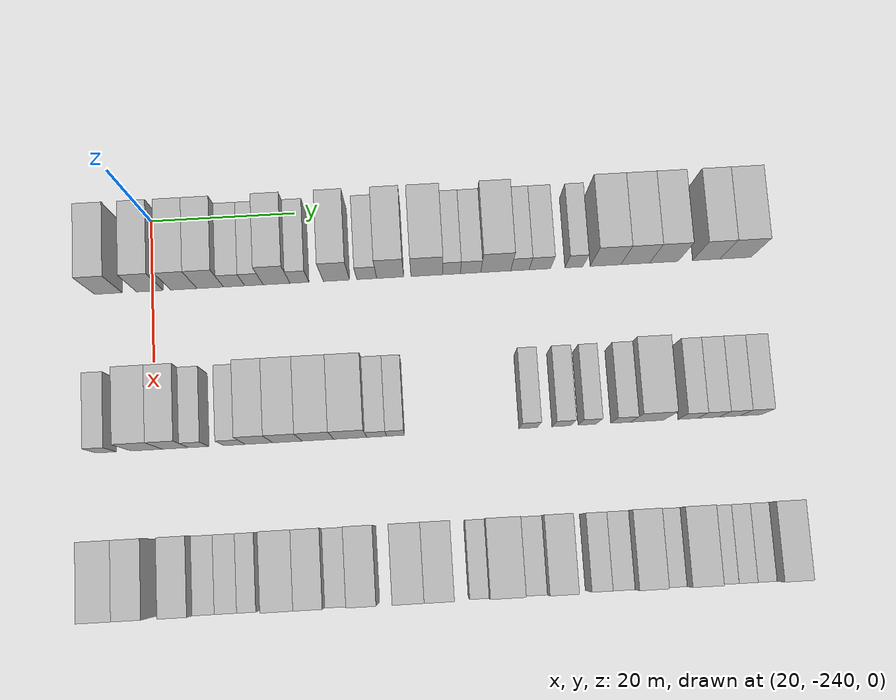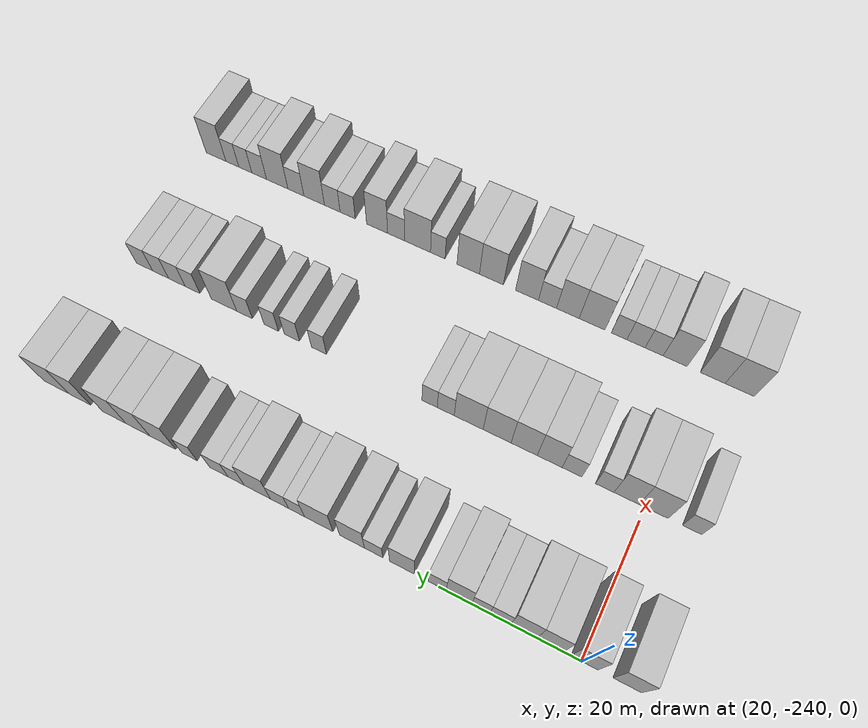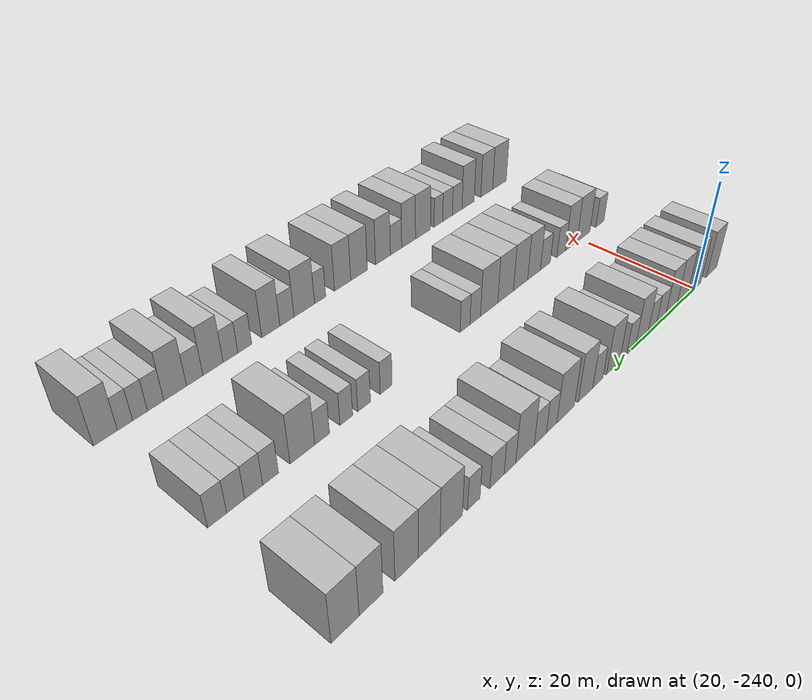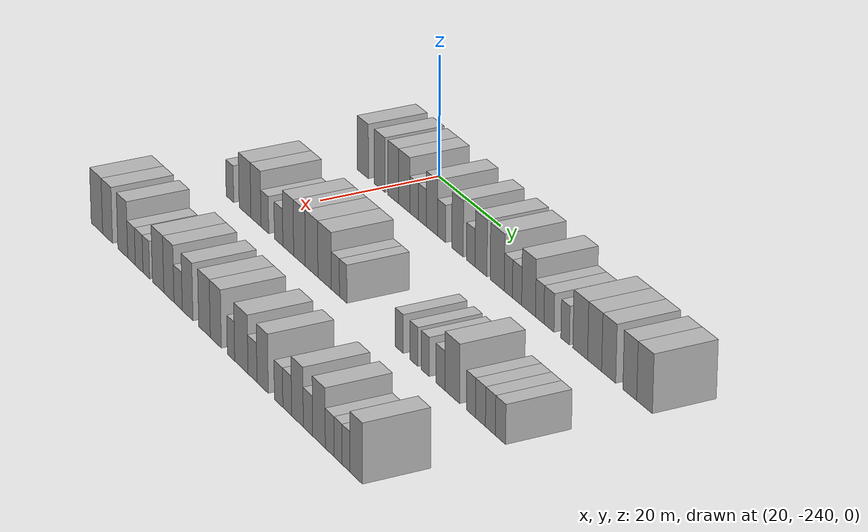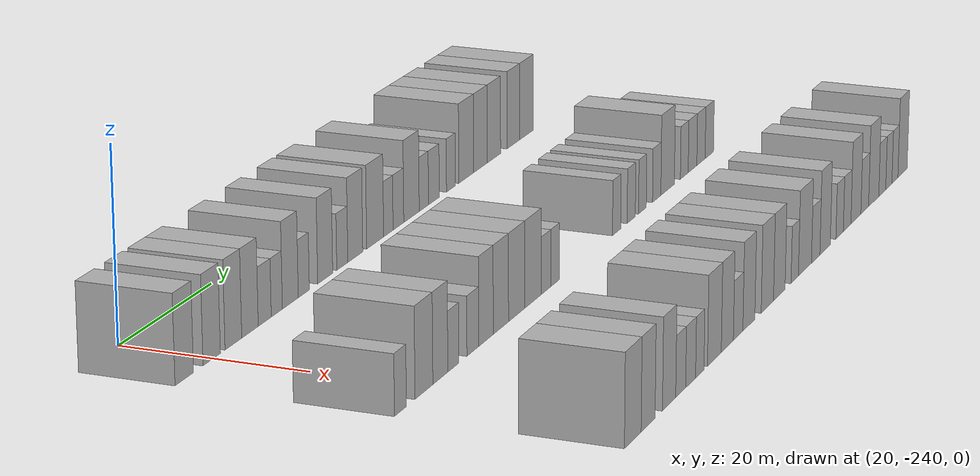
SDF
<sdf version="1.6">
 <world name="default">
  <model name="building_1">
   <static>1</static>
   <pose>25.0000 -246.0928 0 0.000000 0.000000 0.000000</pose>
   <link name="link">
    <pose>0 0 4.50 0 0 0</pose>
    <collision name="collision"><geometry><box><size>10.0000 3.8145 9.0000</size></box></geometry></collision>
    <visual name="visual">
     <cast_shadows>0</cast_shadows>
     <geometry><box><size>10.0000 3.8145 9.0000</size></box></geometry>
     <material>
      <script>
       <uri>model://HANNAS_wall/materials/scripts</uri>
       <uri>model://HANNAS_wall/materials/textures</uri>
       <name>vrc/HANNAS_wall</name>
      </script>
     </material>
    </visual>
   </link>
  </model>
  <model name="building_2">
   <static>1</static>
   <pose>25.0000 -240.3374 0 0.000000 0.000000 0.000000</pose>
   <link name="link">
    <pose>0 0 4.50 0 0 0</pose>
    <collision name="collision"><geometry><box><size>10.0000 3.6962 9.0000</size></box></geometry></collision>
    <visual name="visual">
     <cast_shadows>0</cast_shadows>
     <geometry><box><size>10.0000 3.6962 9.0000</size></box></geometry>
     <material>
      <script>
       <uri>model://HANNAS_wall/materials/scripts</uri>
       <uri>model://HANNAS_wall/materials/textures</uri>
       <name>vrc/HANNAS_wall</name>
      </script>
     </material>
    </visual>
   </link>
  </model>
  <model name="building_3">
   <static>1</static>
   <pose>25.0000 -235.6657 0 0.000000 0.000000 0.000000</pose>
   <link name="link">
    <pose>0 0 4.50 0 0 0</pose>
    <collision name="collision"><geometry><box><size>10.0000 3.6471 9.0000</size></box></geometry></collision>
    <visual name="visual">
     <cast_shadows>0</cast_shadows>
     <geometry><box><size>10.0000 3.6471 9.0000</size></box></geometry>
     <material>
      <script>
       <uri>model://HANNAS_wall/materials/scripts</uri>
       <uri>model://HANNAS_wall/materials/textures</uri>
       <name>vrc/HANNAS_wall</name>
      </script>
     </material>
    </visual>
   </link>
  </model>
  <model name="building_4">
   <static>1</static>
   <pose>25.0000 -232.0111 0 0.000000 0.000000 0.000000</pose>
   <link name="link">
    <pose>0 0 4.50 0 0 0</pose>
    <collision name="collision"><geometry><box><size>10.0000 3.6621 9.0000</size></box></geometry></collision>
    <visual name="visual">
     <cast_shadows>0</cast_shadows>
     <geometry><box><size>10.0000 3.6621 9.0000</size></box></geometry>
     <material>
      <script>
       <uri>model://HANNAS_wall/materials/scripts</uri>
       <uri>model://HANNAS_wall/materials/textures</uri>
       <name>vrc/HANNAS_wall</name>
      </script>
     </material>
    </visual>
   </link>
  </model>
  <model name="building_5">
   <static>1</static>
   <pose>25.0000 -228.7073 0 0.000000 0.000000 0.000000</pose>
   <link name="link">
    <pose>0 0 3.00 0 0 0</pose>
    <collision name="collision"><geometry><box><size>10.0000 2.9455 6.0000</size></box></geometry></collision>
    <visual name="visual">
     <cast_shadows>0</cast_shadows>
     <geometry><box><size>10.0000 2.9455 6.0000</size></box></geometry>
     <material>
      <script>
       <uri>model://HANNAS_wall/materials/scripts</uri>
       <uri>model://HANNAS_wall/materials/textures</uri>
       <name>vrc/HANNAS_wall</name>
      </script>
     </material>
    </visual>
   </link>
  </model>
  <model name="building_6">
   <static>1</static>
   <pose>25.0000 -225.9592 0 0.000000 0.000000 0.000000</pose>
   <link name="link">
    <pose>0 0 3.00 0 0 0</pose>
    <collision name="collision"><geometry><box><size>10.0000 2.5508 6.0000</size></box></geometry></collision>
    <visual name="visual">
     <cast_shadows>0</cast_shadows>
     <geometry><box><size>10.0000 2.5508 6.0000</size></box></geometry>
     <material>
      <script>
       <uri>model://HANNAS_wall/materials/scripts</uri>
       <uri>model://HANNAS_wall/materials/textures</uri>
       <name>vrc/HANNAS_wall</name>
      </script>
     </material>
    </visual>
   </link>
  </model>
  <model name="building_7">
   <static>1</static>
   <pose>25.0000 -222.8356 0 0.000000 0.000000 0.000000</pose>
   <link name="link">
    <pose>0 0 4.50 0 0 0</pose>
    <collision name="collision"><geometry><box><size>10.0000 3.6965 9.0000</size></box></geometry></collision>
    <visual name="visual">
     <cast_shadows>0</cast_shadows>
     <geometry><box><size>10.0000 3.6965 9.0000</size></box></geometry>
     <material>
      <script>
       <uri>model://HANNAS_wall/materials/scripts</uri>
       <uri>model://HANNAS_wall/materials/textures</uri>
       <name>vrc/HANNAS_wall</name>
      </script>
     </material>
    </visual>
   </link>
  </model>
  <model name="building_8">
   <static>1</static>
   <pose>25.0000 -219.6797 0 0.000000 0.000000 0.000000</pose>
   <link name="link">
    <pose>0 0 3.00 0 0 0</pose>
    <collision name="collision"><geometry><box><size>10.0000 2.6153 6.0000</size></box></geometry></collision>
    <visual name="visual">
     <cast_shadows>0</cast_shadows>
     <geometry><box><size>10.0000 2.6153 6.0000</size></box></geometry>
     <material>
      <script>
       <uri>model://HANNAS_wall/materials/scripts</uri>
       <uri>model://HANNAS_wall/materials/textures</uri>
       <name>vrc/HANNAS_wall</name>
      </script>
     </material>
    </visual>
   </link>
  </model>
  <model name="building_9">
   <static>1</static>
   <pose>25.0000 -214.5535 0 0.000000 0.000000 0.000000</pose>
   <link name="link">
    <pose>0 0 4.50 0 0 0</pose>
    <collision name="collision"><geometry><box><size>10.0000 3.6370 9.0000</size></box></geometry></collision>
    <visual name="visual">
     <cast_shadows>0</cast_shadows>
     <geometry><box><size>10.0000 3.6370 9.0000</size></box></geometry>
     <material>
      <script>
       <uri>model://HANNAS_wall/materials/scripts</uri>
       <uri>model://HANNAS_wall/materials/textures</uri>
       <name>vrc/HANNAS_wall</name>
      </script>
     </material>
    </visual>
   </link>
  </model>
  <model name="building_10">
   <static>1</static>
   <pose>25.0000 -210.3671 0 0.000000 0.000000 0.000000</pose>
   <link name="link">
    <pose>0 0 3.00 0 0 0</pose>
    <collision name="collision"><geometry><box><size>10.0000 2.7357 6.0000</size></box></geometry></collision>
    <visual name="visual">
     <cast_shadows>0</cast_shadows>
     <geometry><box><size>10.0000 2.7357 6.0000</size></box></geometry>
     <material>
      <script>
       <uri>model://HANNAS_wall/materials/scripts</uri>
       <uri>model://HANNAS_wall/materials/textures</uri>
       <name>vrc/HANNAS_wall</name>
      </script>
     </material>
    </visual>
   </link>
  </model>
  <model name="building_11">
   <static>1</static>
   <pose>25.0000 -207.1221 0 0.000000 0.000000 0.000000</pose>
   <link name="link">
    <pose>0 0 4.50 0 0 0</pose>
    <collision name="collision"><geometry><box><size>10.0000 3.7543 9.0000</size></box></geometry></collision>
    <visual name="visual">
     <cast_shadows>0</cast_shadows>
     <geometry><box><size>10.0000 3.7543 9.0000</size></box></geometry>
     <material>
      <script>
       <uri>model://HANNAS_wall/materials/scripts</uri>
       <uri>model://HANNAS_wall/materials/textures</uri>
       <name>vrc/HANNAS_wall</name>
      </script>
     </material>
    </visual>
   </link>
  </model>
  <model name="building_12">
   <static>1</static>
   <pose>25.0000 -202.0649 0 0.000000 0.000000 0.000000</pose>
   <link name="link">
    <pose>0 0 4.50 0 0 0</pose>
    <collision name="collision"><geometry><box><size>10.0000 4.3602 9.0000</size></box></geometry></collision>
    <visual name="visual">
     <cast_shadows>0</cast_shadows>
     <geometry><box><size>10.0000 4.3602 9.0000</size></box></geometry>
     <material>
      <script>
       <uri>model://HANNAS_wall/materials/scripts</uri>
       <uri>model://HANNAS_wall/materials/textures</uri>
       <name>vrc/HANNAS_wall</name>
      </script>
     </material>
    </visual>
   </link>
  </model>
  <model name="building_13">
   <static>1</static>
   <pose>25.0000 -198.6433 0 0.000000 0.000000 0.000000</pose>
   <link name="link">
    <pose>0 0 3.00 0 0 0</pose>
    <collision name="collision"><geometry><box><size>10.0000 2.4829 6.0000</size></box></geometry></collision>
    <visual name="visual">
     <cast_shadows>0</cast_shadows>
     <geometry><box><size>10.0000 2.4829 6.0000</size></box></geometry>
     <material>
      <script>
       <uri>model://HANNAS_wall/materials/scripts</uri>
       <uri>model://HANNAS_wall/materials/textures</uri>
       <name>vrc/HANNAS_wall</name>
      </script>
     </material>
    </visual>
   </link>
  </model>
  <model name="building_14">
   <static>1</static>
   <pose>25.0000 -195.9856 0 0.000000 0.000000 0.000000</pose>
   <link name="link">
    <pose>0 0 3.00 0 0 0</pose>
    <collision name="collision"><geometry><box><size>10.0000 2.8325 6.0000</size></box></geometry></collision>
    <visual name="visual">
     <cast_shadows>0</cast_shadows>
     <geometry><box><size>10.0000 2.8325 6.0000</size></box></geometry>
     <material>
      <script>
       <uri>model://HANNAS_wall/materials/scripts</uri>
       <uri>model://HANNAS_wall/materials/textures</uri>
       <name>vrc/HANNAS_wall</name>
      </script>
     </material>
    </visual>
   </link>
  </model>
  <model name="building_15">
   <static>1</static>
   <pose>25.0000 -192.4904 0 0.000000 0.000000 0.000000</pose>
   <link name="link">
    <pose>0 0 4.50 0 0 0</pose>
    <collision name="collision"><geometry><box><size>10.0000 4.1579 9.0000</size></box></geometry></collision>
    <visual name="visual">
     <cast_shadows>0</cast_shadows>
     <geometry><box><size>10.0000 4.1579 9.0000</size></box></geometry>
     <material>
      <script>
       <uri>model://HANNAS_wall/materials/scripts</uri>
       <uri>model://HANNAS_wall/materials/textures</uri>
       <name>vrc/HANNAS_wall</name>
      </script>
     </material>
    </visual>
   </link>
  </model>
  <model name="building_16">
   <static>1</static>
   <pose>25.0000 -189.1389 0 0.000000 0.000000 0.000000</pose>
   <link name="link">
    <pose>0 0 3.00 0 0 0</pose>
    <collision name="collision"><geometry><box><size>10.0000 2.5451 6.0000</size></box></geometry></collision>
    <visual name="visual">
     <cast_shadows>0</cast_shadows>
     <geometry><box><size>10.0000 2.5451 6.0000</size></box></geometry>
     <material>
      <script>
       <uri>model://HANNAS_wall/materials/scripts</uri>
       <uri>model://HANNAS_wall/materials/textures</uri>
       <name>vrc/HANNAS_wall</name>
      </script>
     </material>
    </visual>
   </link>
  </model>
  <model name="building_17">
   <static>1</static>
   <pose>25.0000 -186.3680 0 0.000000 0.000000 0.000000</pose>
   <link name="link">
    <pose>0 0 3.00 0 0 0</pose>
    <collision name="collision"><geometry><box><size>10.0000 2.9968 6.0000</size></box></geometry></collision>
    <visual name="visual">
     <cast_shadows>0</cast_shadows>
     <geometry><box><size>10.0000 2.9968 6.0000</size></box></geometry>
     <material>
      <script>
       <uri>model://HANNAS_wall/materials/scripts</uri>
       <uri>model://HANNAS_wall/materials/textures</uri>
       <name>vrc/HANNAS_wall</name>
      </script>
     </material>
    </visual>
   </link>
  </model>
  <model name="building_18">
   <static>1</static>
   <pose>25.0000 -181.6189 0 0.000000 0.000000 0.000000</pose>
   <link name="link">
    <pose>0 0 3.00 0 0 0</pose>
    <collision name="collision"><geometry><box><size>10.0000 2.5014 6.0000</size></box></geometry></collision>
    <visual name="visual">
     <cast_shadows>0</cast_shadows>
     <geometry><box><size>10.0000 2.5014 6.0000</size></box></geometry>
     <material>
      <script>
       <uri>model://HANNAS_wall/materials/scripts</uri>
       <uri>model://HANNAS_wall/materials/textures</uri>
       <name>vrc/HANNAS_wall</name>
      </script>
     </material>
    </visual>
   </link>
  </model>
  <model name="building_19">
   <static>1</static>
   <pose>25.0000 -177.2330 0 0.000000 0.000000 0.000000</pose>
   <link name="link">
    <pose>0 0 4.50 0 0 0</pose>
    <collision name="collision"><geometry><box><size>10.0000 4.2704 9.0000</size></box></geometry></collision>
    <visual name="visual">
     <cast_shadows>0</cast_shadows>
     <geometry><box><size>10.0000 4.2704 9.0000</size></box></geometry>
     <material>
      <script>
       <uri>model://HANNAS_wall/materials/scripts</uri>
       <uri>model://HANNAS_wall/materials/textures</uri>
       <name>vrc/HANNAS_wall</name>
      </script>
     </material>
    </visual>
   </link>
  </model>
  <model name="building_20">
   <static>1</static>
   <pose>25.0000 -173.0918 0 0.000000 0.000000 0.000000</pose>
   <link name="link">
    <pose>0 0 4.50 0 0 0</pose>
    <collision name="collision"><geometry><box><size>10.0000 4.0120 9.0000</size></box></geometry></collision>
    <visual name="visual">
     <cast_shadows>0</cast_shadows>
     <geometry><box><size>10.0000 4.0120 9.0000</size></box></geometry>
     <material>
      <script>
       <uri>model://HANNAS_wall/materials/scripts</uri>
       <uri>model://HANNAS_wall/materials/textures</uri>
       <name>vrc/HANNAS_wall</name>
      </script>
     </material>
    </visual>
   </link>
  </model>
  <model name="building_21">
   <static>1</static>
   <pose>25.0000 -169.0898 0 0.000000 0.000000 0.000000</pose>
   <link name="link">
    <pose>0 0 4.50 0 0 0</pose>
    <collision name="collision"><geometry><box><size>10.0000 3.9919 9.0000</size></box></geometry></collision>
    <visual name="visual">
     <cast_shadows>0</cast_shadows>
     <geometry><box><size>10.0000 3.9919 9.0000</size></box></geometry>
     <material>
      <script>
       <uri>model://HANNAS_wall/materials/scripts</uri>
       <uri>model://HANNAS_wall/materials/textures</uri>
       <name>vrc/HANNAS_wall</name>
      </script>
     </material>
    </visual>
   </link>
  </model>
  <model name="building_22">
   <static>1</static>
   <pose>25.0000 -163.1748 0 0.000000 0.000000 0.000000</pose>
   <link name="link">
    <pose>0 0 4.50 0 0 0</pose>
    <collision name="collision"><geometry><box><size>10.0000 3.8382 9.0000</size></box></geometry></collision>
    <visual name="visual">
     <cast_shadows>0</cast_shadows>
     <geometry><box><size>10.0000 3.8382 9.0000</size></box></geometry>
     <material>
      <script>
       <uri>model://HANNAS_wall/materials/scripts</uri>
       <uri>model://HANNAS_wall/materials/textures</uri>
       <name>vrc/HANNAS_wall</name>
      </script>
     </material>
    </visual>
   </link>
  </model>
  <model name="building_23">
   <static>1</static>
   <pose>25.0000 -159.0883 0 0.000000 0.000000 0.000000</pose>
   <link name="link">
    <pose>0 0 4.50 0 0 0</pose>
    <collision name="collision"><geometry><box><size>10.0000 4.3348 9.0000</size></box></geometry></collision>
    <visual name="visual">
     <cast_shadows>0</cast_shadows>
     <geometry><box><size>10.0000 4.3348 9.0000</size></box></geometry>
     <material>
      <script>
       <uri>model://HANNAS_wall/materials/scripts</uri>
       <uri>model://HANNAS_wall/materials/textures</uri>
       <name>vrc/HANNAS_wall</name>
      </script>
     </material>
    </visual>
   </link>
  </model>
  <model name="building_118">
   <static>1</static>
   <pose>47.0000 -246.6379 0 0.000000 0.000000 0.000000</pose>
   <link name="link">
    <pose>0 0 3.00 0 0 0</pose>
    <collision name="collision"><geometry><box><size>10.0000 2.7242 6.0000</size></box></geometry></collision>
    <visual name="visual">
     <cast_shadows>0</cast_shadows>
     <geometry><box><size>10.0000 2.7242 6.0000</size></box></geometry>
     <material>
      <script>
       <uri>model://HANNAS_wall/materials/scripts</uri>
       <uri>model://HANNAS_wall/materials/textures</uri>
       <name>vrc/HANNAS_wall</name>
      </script>
     </material>
    </visual>
   </link>
  </model>
  <model name="building_119">
   <static>1</static>
   <pose>47.0000 -241.1770 0 0.000000 0.000000 0.000000</pose>
   <link name="link">
    <pose>0 0 4.50 0 0 0</pose>
    <collision name="collision"><geometry><box><size>10.0000 4.1976 9.0000</size></box></geometry></collision>
    <visual name="visual">
     <cast_shadows>0</cast_shadows>
     <geometry><box><size>10.0000 4.1976 9.0000</size></box></geometry>
     <material>
      <script>
       <uri>model://HANNAS_wall/materials/scripts</uri>
       <uri>model://HANNAS_wall/materials/textures</uri>
       <name>vrc/HANNAS_wall</name>
      </script>
     </material>
    </visual>
   </link>
  </model>
  <model name="building_120">
   <static>1</static>
   <pose>47.0000 -237.2765 0 0.000000 0.000000 0.000000</pose>
   <link name="link">
    <pose>0 0 4.50 0 0 0</pose>
    <collision name="collision"><geometry><box><size>10.0000 3.6033 9.0000</size></box></geometry></collision>
    <visual name="visual">
     <cast_shadows>0</cast_shadows>
     <geometry><box><size>10.0000 3.6033 9.0000</size></box></geometry>
     <material>
      <script>
       <uri>model://HANNAS_wall/materials/scripts</uri>
       <uri>model://HANNAS_wall/materials/textures</uri>
       <name>vrc/HANNAS_wall</name>
      </script>
     </material>
    </visual>
   </link>
  </model>
  <model name="building_121">
   <static>1</static>
   <pose>47.0000 -234.1276 0 0.000000 0.000000 0.000000</pose>
   <link name="link">
    <pose>0 0 3.00 0 0 0</pose>
    <collision name="collision"><geometry><box><size>10.0000 2.6944 6.0000</size></box></geometry></collision>
    <visual name="visual">
     <cast_shadows>0</cast_shadows>
     <geometry><box><size>10.0000 2.6944 6.0000</size></box></geometry>
     <material>
      <script>
       <uri>model://HANNAS_wall/materials/scripts</uri>
       <uri>model://HANNAS_wall/materials/textures</uri>
       <name>vrc/HANNAS_wall</name>
      </script>
     </material>
    </visual>
   </link>
  </model>
  <model name="building_122">
   <static>1</static>
   <pose>47.0000 -229.3101 0 0.000000 0.000000 0.000000</pose>
   <link name="link">
    <pose>0 0 3.00 0 0 0</pose>
    <collision name="collision"><geometry><box><size>10.0000 2.9406 6.0000</size></box></geometry></collision>
    <visual name="visual">
     <cast_shadows>0</cast_shadows>
     <geometry><box><size>10.0000 2.9406 6.0000</size></box></geometry>
     <material>
      <script>
       <uri>model://HANNAS_wall/materials/scripts</uri>
       <uri>model://HANNAS_wall/materials/textures</uri>
       <name>vrc/HANNAS_wall</name>
      </script>
     </material>
    </visual>
   </link>
  </model>
  <model name="building_123">
   <static>1</static>
   <pose>47.0000 -225.9829 0 0.000000 0.000000 0.000000</pose>
   <link name="link">
    <pose>0 0 4.50 0 0 0</pose>
    <collision name="collision"><geometry><box><size>10.0000 3.7139 9.0000</size></box></geometry></collision>
    <visual name="visual">
     <cast_shadows>0</cast_shadows>
     <geometry><box><size>10.0000 3.7139 9.0000</size></box></geometry>
     <material>
      <script>
       <uri>model://HANNAS_wall/materials/scripts</uri>
       <uri>model://HANNAS_wall/materials/textures</uri>
       <name>vrc/HANNAS_wall</name>
      </script>
     </material>
    </visual>
   </link>
  </model>
  <model name="building_124">
   <static>1</static>
   <pose>47.0000 -222.1419 0 0.000000 0.000000 0.000000</pose>
   <link name="link">
    <pose>0 0 4.50 0 0 0</pose>
    <collision name="collision"><geometry><box><size>10.0000 3.9681 9.0000</size></box></geometry></collision>
    <visual name="visual">
     <cast_shadows>0</cast_shadows>
     <geometry><box><size>10.0000 3.9681 9.0000</size></box></geometry>
     <material>
      <script>
       <uri>model://HANNAS_wall/materials/scripts</uri>
       <uri>model://HANNAS_wall/materials/textures</uri>
       <name>vrc/HANNAS_wall</name>
      </script>
     </material>
    </visual>
   </link>
  </model>
  <model name="building_125">
   <static>1</static>
   <pose>47.0000 -218.0190 0 0.000000 0.000000 0.000000</pose>
   <link name="link">
    <pose>0 0 4.50 0 0 0</pose>
    <collision name="collision"><geometry><box><size>10.0000 4.2778 9.0000</size></box></geometry></collision>
    <visual name="visual">
     <cast_shadows>0</cast_shadows>
     <geometry><box><size>10.0000 4.2778 9.0000</size></box></geometry>
     <material>
      <script>
       <uri>model://HANNAS_wall/materials/scripts</uri>
       <uri>model://HANNAS_wall/materials/textures</uri>
       <name>vrc/HANNAS_wall</name>
      </script>
     </material>
    </visual>
   </link>
  </model>
  <model name="building_126">
   <static>1</static>
   <pose>47.0000 -213.6345 0 0.000000 0.000000 0.000000</pose>
   <link name="link">
    <pose>0 0 4.50 0 0 0</pose>
    <collision name="collision"><geometry><box><size>10.0000 4.4910 9.0000</size></box></geometry></collision>
    <visual name="visual">
     <cast_shadows>0</cast_shadows>
     <geometry><box><size>10.0000 4.4910 9.0000</size></box></geometry>
     <material>
      <script>
       <uri>model://HANNAS_wall/materials/scripts</uri>
       <uri>model://HANNAS_wall/materials/textures</uri>
       <name>vrc/HANNAS_wall</name>
      </script>
     </material>
    </visual>
   </link>
  </model>
  <model name="building_127">
   <static>1</static>
   <pose>47.0000 -210.0616 0 0.000000 0.000000 0.000000</pose>
   <link name="link">
    <pose>0 0 3.00 0 0 0</pose>
    <collision name="collision"><geometry><box><size>10.0000 2.6549 6.0000</size></box></geometry></collision>
    <visual name="visual">
     <cast_shadows>0</cast_shadows>
     <geometry><box><size>10.0000 2.6549 6.0000</size></box></geometry>
     <material>
      <script>
       <uri>model://HANNAS_wall/materials/scripts</uri>
       <uri>model://HANNAS_wall/materials/textures</uri>
       <name>vrc/HANNAS_wall</name>
      </script>
     </material>
    </visual>
   </link>
  </model>
  <model name="building_128">
   <static>1</static>
   <pose>47.0000 -207.5198 0 0.000000 0.000000 0.000000</pose>
   <link name="link">
    <pose>0 0 3.00 0 0 0</pose>
    <collision name="collision"><geometry><box><size>10.0000 2.4287 6.0000</size></box></geometry></collision>
    <visual name="visual">
     <cast_shadows>0</cast_shadows>
     <geometry><box><size>10.0000 2.4287 6.0000</size></box></geometry>
     <material>
      <script>
       <uri>model://HANNAS_wall/materials/scripts</uri>
       <uri>model://HANNAS_wall/materials/textures</uri>
       <name>vrc/HANNAS_wall</name>
      </script>
     </material>
    </visual>
   </link>
  </model>
  <model name="building_129">
   <static>1</static>
   <pose>47.0000 -189.5593 0 0.000000 0.000000 0.000000</pose>
   <link name="link">
    <pose>0 0 3.00 0 0 0</pose>
    <collision name="collision"><geometry><box><size>10.0000 2.4974 6.0000</size></box></geometry></collision>
    <visual name="visual">
     <cast_shadows>0</cast_shadows>
     <geometry><box><size>10.0000 2.4974 6.0000</size></box></geometry>
     <material>
      <script>
       <uri>model://HANNAS_wall/materials/scripts</uri>
       <uri>model://HANNAS_wall/materials/textures</uri>
       <name>vrc/HANNAS_wall</name>
      </script>
     </material>
    </visual>
   </link>
  </model>
  <model name="building_130">
   <static>1</static>
   <pose>47.0000 -185.0377 0 0.000000 0.000000 0.000000</pose>
   <link name="link">
    <pose>0 0 3.00 0 0 0</pose>
    <collision name="collision"><geometry><box><size>10.0000 2.5457 6.0000</size></box></geometry></collision>
    <visual name="visual">
     <cast_shadows>0</cast_shadows>
     <geometry><box><size>10.0000 2.5457 6.0000</size></box></geometry>
     <material>
      <script>
       <uri>model://HANNAS_wall/materials/scripts</uri>
       <uri>model://HANNAS_wall/materials/textures</uri>
       <name>vrc/HANNAS_wall</name>
      </script>
     </material>
    </visual>
   </link>
  </model>
  <model name="building_131">
   <static>1</static>
   <pose>47.0000 -181.5389 0 0.000000 0.000000 0.000000</pose>
   <link name="link">
    <pose>0 0 3.00 0 0 0</pose>
    <collision name="collision"><geometry><box><size>10.0000 2.4518 6.0000</size></box></geometry></collision>
    <visual name="visual">
     <cast_shadows>0</cast_shadows>
     <geometry><box><size>10.0000 2.4518 6.0000</size></box></geometry>
     <material>
      <script>
       <uri>model://HANNAS_wall/materials/scripts</uri>
       <uri>model://HANNAS_wall/materials/textures</uri>
       <name>vrc/HANNAS_wall</name>
      </script>
     </material>
    </visual>
   </link>
  </model>
  <model name="building_132">
   <static>1</static>
   <pose>47.0000 -176.9565 0 0.000000 0.000000 0.000000</pose>
   <link name="link">
    <pose>0 0 3.00 0 0 0</pose>
    <collision name="collision"><geometry><box><size>10.0000 2.7130 6.0000</size></box></geometry></collision>
    <visual name="visual">
     <cast_shadows>0</cast_shadows>
     <geometry><box><size>10.0000 2.7130 6.0000</size></box></geometry>
     <material>
      <script>
       <uri>model://HANNAS_wall/materials/scripts</uri>
       <uri>model://HANNAS_wall/materials/textures</uri>
       <name>vrc/HANNAS_wall</name>
      </script>
     </material>
    </visual>
   </link>
  </model>
  <model name="building_133">
   <static>1</static>
   <pose>47.0000 -173.3848 0 0.000000 0.000000 0.000000</pose>
   <link name="link">
    <pose>0 0 4.50 0 0 0</pose>
    <collision name="collision"><geometry><box><size>10.0000 4.4305 9.0000</size></box></geometry></collision>
    <visual name="visual">
     <cast_shadows>0</cast_shadows>
     <geometry><box><size>10.0000 4.4305 9.0000</size></box></geometry>
     <material>
      <script>
       <uri>model://HANNAS_wall/materials/scripts</uri>
       <uri>model://HANNAS_wall/materials/textures</uri>
       <name>vrc/HANNAS_wall</name>
      </script>
     </material>
    </visual>
   </link>
  </model>
  <model name="building_134">
   <static>1</static>
   <pose>47.0000 -167.8490 0 0.000000 0.000000 0.000000</pose>
   <link name="link">
    <pose>0 0 3.00 0 0 0</pose>
    <collision name="collision"><geometry><box><size>10.0000 2.6410 6.0000</size></box></geometry></collision>
    <visual name="visual">
     <cast_shadows>0</cast_shadows>
     <geometry><box><size>10.0000 2.6410 6.0000</size></box></geometry>
     <material>
      <script>
       <uri>model://HANNAS_wall/materials/scripts</uri>
       <uri>model://HANNAS_wall/materials/textures</uri>
       <name>vrc/HANNAS_wall</name>
      </script>
     </material>
    </visual>
   </link>
  </model>
  <model name="building_135">
   <static>1</static>
   <pose>47.0000 -165.0572 0 0.000000 0.000000 0.000000</pose>
   <link name="link">
    <pose>0 0 3.00 0 0 0</pose>
    <collision name="collision"><geometry><box><size>10.0000 2.9426 6.0000</size></box></geometry></collision>
    <visual name="visual">
     <cast_shadows>0</cast_shadows>
     <geometry><box><size>10.0000 2.9426 6.0000</size></box></geometry>
     <material>
      <script>
       <uri>model://HANNAS_wall/materials/scripts</uri>
       <uri>model://HANNAS_wall/materials/textures</uri>
       <name>vrc/HANNAS_wall</name>
      </script>
     </material>
    </visual>
   </link>
  </model>
  <model name="building_136">
   <static>1</static>
   <pose>47.0000 -162.1556 0 0.000000 0.000000 0.000000</pose>
   <link name="link">
    <pose>0 0 3.00 0 0 0</pose>
    <collision name="collision"><geometry><box><size>10.0000 2.8607 6.0000</size></box></geometry></collision>
    <visual name="visual">
     <cast_shadows>0</cast_shadows>
     <geometry><box><size>10.0000 2.8607 6.0000</size></box></geometry>
     <material>
      <script>
       <uri>model://HANNAS_wall/materials/scripts</uri>
       <uri>model://HANNAS_wall/materials/textures</uri>
       <name>vrc/HANNAS_wall</name>
      </script>
     </material>
    </visual>
   </link>
  </model>
  <model name="building_137">
   <static>1</static>
   <pose>47.0000 -159.2585 0 0.000000 0.000000 0.000000</pose>
   <link name="link">
    <pose>0 0 3.00 0 0 0</pose>
    <collision name="collision"><geometry><box><size>10.0000 2.9335 6.0000</size></box></geometry></collision>
    <visual name="visual">
     <cast_shadows>0</cast_shadows>
     <geometry><box><size>10.0000 2.9335 6.0000</size></box></geometry>
     <material>
      <script>
       <uri>model://HANNAS_wall/materials/scripts</uri>
       <uri>model://HANNAS_wall/materials/textures</uri>
       <name>vrc/HANNAS_wall</name>
      </script>
     </material>
    </visual>
   </link>
  </model>
  <model name="building_225">
   <static>1</static>
   <pose>69.0000 -245.8222 0 0.000000 0.000000 0.000000</pose>
   <link name="link">
    <pose>0 0 4.50 0 0 0</pose>
    <collision name="collision"><geometry><box><size>10.0000 4.3555 9.0000</size></box></geometry></collision>
    <visual name="visual">
     <cast_shadows>0</cast_shadows>
     <geometry><box><size>10.0000 4.3555 9.0000</size></box></geometry>
     <material>
      <script>
       <uri>model://HANNAS_wall/materials/scripts</uri>
       <uri>model://HANNAS_wall/materials/textures</uri>
       <name>vrc/HANNAS_wall</name>
      </script>
     </material>
    </visual>
   </link>
  </model>
  <model name="building_226">
   <static>1</static>
   <pose>69.0000 -241.7785 0 0.000000 0.000000 0.000000</pose>
   <link name="link">
    <pose>0 0 4.50 0 0 0</pose>
    <collision name="collision"><geometry><box><size>10.0000 3.7319 9.0000</size></box></geometry></collision>
    <visual name="visual">
     <cast_shadows>0</cast_shadows>
     <geometry><box><size>10.0000 3.7319 9.0000</size></box></geometry>
     <material>
      <script>
       <uri>model://HANNAS_wall/materials/scripts</uri>
       <uri>model://HANNAS_wall/materials/textures</uri>
       <name>vrc/HANNAS_wall</name>
      </script>
     </material>
    </visual>
   </link>
  </model>
  <model name="building_227">
   <static>1</static>
   <pose>69.0000 -236.0793 0 0.000000 0.000000 0.000000</pose>
   <link name="link">
    <pose>0 0 4.50 0 0 0</pose>
    <collision name="collision"><geometry><box><size>10.0000 3.6665 9.0000</size></box></geometry></collision>
    <visual name="visual">
     <cast_shadows>0</cast_shadows>
     <geometry><box><size>10.0000 3.6665 9.0000</size></box></geometry>
     <material>
      <script>
       <uri>model://HANNAS_wall/materials/scripts</uri>
       <uri>model://HANNAS_wall/materials/textures</uri>
       <name>vrc/HANNAS_wall</name>
      </script>
     </material>
    </visual>
   </link>
  </model>
  <model name="building_228">
   <static>1</static>
   <pose>69.0000 -232.8501 0 0.000000 0.000000 0.000000</pose>
   <link name="link">
    <pose>0 0 3.00 0 0 0</pose>
    <collision name="collision"><geometry><box><size>10.0000 2.7920 6.0000</size></box></geometry></collision>
    <visual name="visual">
     <cast_shadows>0</cast_shadows>
     <geometry><box><size>10.0000 2.7920 6.0000</size></box></geometry>
     <material>
      <script>
       <uri>model://HANNAS_wall/materials/scripts</uri>
       <uri>model://HANNAS_wall/materials/textures</uri>
       <name>vrc/HANNAS_wall</name>
      </script>
     </material>
    </visual>
   </link>
  </model>
  <model name="building_229">
   <static>1</static>
   <pose>69.0000 -230.0400 0 0.000000 0.000000 0.000000</pose>
   <link name="link">
    <pose>0 0 3.00 0 0 0</pose>
    <collision name="collision"><geometry><box><size>10.0000 2.8282 6.0000</size></box></geometry></collision>
    <visual name="visual">
     <cast_shadows>0</cast_shadows>
     <geometry><box><size>10.0000 2.8282 6.0000</size></box></geometry>
     <material>
      <script>
       <uri>model://HANNAS_wall/materials/scripts</uri>
       <uri>model://HANNAS_wall/materials/textures</uri>
       <name>vrc/HANNAS_wall</name>
      </script>
     </material>
    </visual>
   </link>
  </model>
  <model name="building_230">
   <static>1</static>
   <pose>69.0000 -227.4124 0 0.000000 0.000000 0.000000</pose>
   <link name="link">
    <pose>0 0 3.00 0 0 0</pose>
    <collision name="collision"><geometry><box><size>10.0000 2.4270 6.0000</size></box></geometry></collision>
    <visual name="visual">
     <cast_shadows>0</cast_shadows>
     <geometry><box><size>10.0000 2.4270 6.0000</size></box></geometry>
     <material>
      <script>
       <uri>model://HANNAS_wall/materials/scripts</uri>
       <uri>model://HANNAS_wall/materials/textures</uri>
       <name>vrc/HANNAS_wall</name>
      </script>
     </material>
    </visual>
   </link>
  </model>
  <model name="building_231">
   <static>1</static>
   <pose>69.0000 -223.1530 0 0.000000 0.000000 0.000000</pose>
   <link name="link">
    <pose>0 0 4.50 0 0 0</pose>
    <collision name="collision"><geometry><box><size>10.0000 4.0917 9.0000</size></box></geometry></collision>
    <visual name="visual">
     <cast_shadows>0</cast_shadows>
     <geometry><box><size>10.0000 4.0917 9.0000</size></box></geometry>
     <material>
      <script>
       <uri>model://HANNAS_wall/materials/scripts</uri>
       <uri>model://HANNAS_wall/materials/textures</uri>
       <name>vrc/HANNAS_wall</name>
      </script>
     </material>
    </visual>
   </link>
  </model>
  <model name="building_232">
   <static>1</static>
   <pose>69.0000 -219.2875 0 0.000000 0.000000 0.000000</pose>
   <link name="link">
    <pose>0 0 4.50 0 0 0</pose>
    <collision name="collision"><geometry><box><size>10.0000 3.6393 9.0000</size></box></geometry></collision>
    <visual name="visual">
     <cast_shadows>0</cast_shadows>
     <geometry><box><size>10.0000 3.6393 9.0000</size></box></geometry>
     <material>
      <script>
       <uri>model://HANNAS_wall/materials/scripts</uri>
       <uri>model://HANNAS_wall/materials/textures</uri>
       <name>vrc/HANNAS_wall</name>
      </script>
     </material>
    </visual>
   </link>
  </model>
  <model name="building_233">
   <static>1</static>
   <pose>69.0000 -216.0091 0 0.000000 0.000000 0.000000</pose>
   <link name="link">
    <pose>0 0 3.00 0 0 0</pose>
    <collision name="collision"><geometry><box><size>10.0000 2.9176 6.0000</size></box></geometry></collision>
    <visual name="visual">
     <cast_shadows>0</cast_shadows>
     <geometry><box><size>10.0000 2.9176 6.0000</size></box></geometry>
     <material>
      <script>
       <uri>model://HANNAS_wall/materials/scripts</uri>
       <uri>model://HANNAS_wall/materials/textures</uri>
       <name>vrc/HANNAS_wall</name>
      </script>
     </material>
    </visual>
   </link>
  </model>
  <model name="building_234">
   <static>1</static>
   <pose>69.0000 -212.6821 0 0.000000 0.000000 0.000000</pose>
   <link name="link">
    <pose>0 0 4.50 0 0 0</pose>
    <collision name="collision"><geometry><box><size>10.0000 3.7363 9.0000</size></box></geometry></collision>
    <visual name="visual">
     <cast_shadows>0</cast_shadows>
     <geometry><box><size>10.0000 3.7363 9.0000</size></box></geometry>
     <material>
      <script>
       <uri>model://HANNAS_wall/materials/scripts</uri>
       <uri>model://HANNAS_wall/materials/textures</uri>
       <name>vrc/HANNAS_wall</name>
      </script>
     </material>
    </visual>
   </link>
  </model>
  <model name="building_235">
   <static>1</static>
   <pose>69.0000 -206.8278 0 0.000000 0.000000 0.000000</pose>
   <link name="link">
    <pose>0 0 4.50 0 0 0</pose>
    <collision name="collision"><geometry><box><size>10.0000 3.9723 9.0000</size></box></geometry></collision>
    <visual name="visual">
     <cast_shadows>0</cast_shadows>
     <geometry><box><size>10.0000 3.9723 9.0000</size></box></geometry>
     <material>
      <script>
       <uri>model://HANNAS_wall/materials/scripts</uri>
       <uri>model://HANNAS_wall/materials/textures</uri>
       <name>vrc/HANNAS_wall</name>
      </script>
     </material>
    </visual>
   </link>
  </model>
  <model name="building_236">
   <static>1</static>
   <pose>69.0000 -202.9564 0 0.000000 0.000000 0.000000</pose>
   <link name="link">
    <pose>0 0 4.50 0 0 0</pose>
    <collision name="collision"><geometry><box><size>10.0000 3.7705 9.0000</size></box></geometry></collision>
    <visual name="visual">
     <cast_shadows>0</cast_shadows>
     <geometry><box><size>10.0000 3.7705 9.0000</size></box></geometry>
     <material>
      <script>
       <uri>model://HANNAS_wall/materials/scripts</uri>
       <uri>model://HANNAS_wall/materials/textures</uri>
       <name>vrc/HANNAS_wall</name>
      </script>
     </material>
    </visual>
   </link>
  </model>
  <model name="building_237">
   <static>1</static>
   <pose>69.0000 -197.8340 0 0.000000 0.000000 0.000000</pose>
   <link name="link">
    <pose>0 0 3.00 0 0 0</pose>
    <collision name="collision"><geometry><box><size>10.0000 2.4742 6.0000</size></box></geometry></collision>
    <visual name="visual">
     <cast_shadows>0</cast_shadows>
     <geometry><box><size>10.0000 2.4742 6.0000</size></box></geometry>
     <material>
      <script>
       <uri>model://HANNAS_wall/materials/scripts</uri>
       <uri>model://HANNAS_wall/materials/textures</uri>
       <name>vrc/HANNAS_wall</name>
      </script>
     </material>
    </visual>
   </link>
  </model>
  <model name="building_238">
   <static>1</static>
   <pose>69.0000 -194.3706 0 0.000000 0.000000 0.000000</pose>
   <link name="link">
    <pose>0 0 4.50 0 0 0</pose>
    <collision name="collision"><geometry><box><size>10.0000 4.4526 9.0000</size></box></geometry></collision>
    <visual name="visual">
     <cast_shadows>0</cast_shadows>
     <geometry><box><size>10.0000 4.4526 9.0000</size></box></geometry>
     <material>
      <script>
       <uri>model://HANNAS_wall/materials/scripts</uri>
       <uri>model://HANNAS_wall/materials/textures</uri>
       <name>vrc/HANNAS_wall</name>
      </script>
     </material>
    </visual>
   </link>
  </model>
  <model name="building_239">
   <static>1</static>
   <pose>69.0000 -190.6718 0 0.000000 0.000000 0.000000</pose>
   <link name="link">
    <pose>0 0 3.00 0 0 0</pose>
    <collision name="collision"><geometry><box><size>10.0000 2.9450 6.0000</size></box></geometry></collision>
    <visual name="visual">
     <cast_shadows>0</cast_shadows>
     <geometry><box><size>10.0000 2.9450 6.0000</size></box></geometry>
     <material>
      <script>
       <uri>model://HANNAS_wall/materials/scripts</uri>
       <uri>model://HANNAS_wall/materials/textures</uri>
       <name>vrc/HANNAS_wall</name>
      </script>
     </material>
    </visual>
   </link>
  </model>
  <model name="building_240">
   <static>1</static>
   <pose>69.0000 -187.3633 0 0.000000 0.000000 0.000000</pose>
   <link name="link">
    <pose>0 0 4.50 0 0 0</pose>
    <collision name="collision"><geometry><box><size>10.0000 3.6721 9.0000</size></box></geometry></collision>
    <visual name="visual">
     <cast_shadows>0</cast_shadows>
     <geometry><box><size>10.0000 3.6721 9.0000</size></box></geometry>
     <material>
      <script>
       <uri>model://HANNAS_wall/materials/scripts</uri>
       <uri>model://HANNAS_wall/materials/textures</uri>
       <name>vrc/HANNAS_wall</name>
      </script>
     </material>
    </visual>
   </link>
  </model>
  <model name="building_241">
   <static>1</static>
   <pose>69.0000 -182.1819 0 0.000000 0.000000 0.000000</pose>
   <link name="link">
    <pose>0 0 3.00 0 0 0</pose>
    <collision name="collision"><geometry><box><size>10.0000 2.6907 6.0000</size></box></geometry></collision>
    <visual name="visual">
     <cast_shadows>0</cast_shadows>
     <geometry><box><size>10.0000 2.6907 6.0000</size></box></geometry>
     <material>
      <script>
       <uri>model://HANNAS_wall/materials/scripts</uri>
       <uri>model://HANNAS_wall/materials/textures</uri>
       <name>vrc/HANNAS_wall</name>
      </script>
     </material>
    </visual>
   </link>
  </model>
  <model name="building_242">
   <static>1</static>
   <pose>69.0000 -179.4400 0 0.000000 0.000000 0.000000</pose>
   <link name="link">
    <pose>0 0 3.00 0 0 0</pose>
    <collision name="collision"><geometry><box><size>10.0000 2.7930 6.0000</size></box></geometry></collision>
    <visual name="visual">
     <cast_shadows>0</cast_shadows>
     <geometry><box><size>10.0000 2.7930 6.0000</size></box></geometry>
     <material>
      <script>
       <uri>model://HANNAS_wall/materials/scripts</uri>
       <uri>model://HANNAS_wall/materials/textures</uri>
       <name>vrc/HANNAS_wall</name>
      </script>
     </material>
    </visual>
   </link>
  </model>
  <model name="building_243">
   <static>1</static>
   <pose>69.0000 -176.1895 0 0.000000 0.000000 0.000000</pose>
   <link name="link">
    <pose>0 0 4.50 0 0 0</pose>
    <collision name="collision"><geometry><box><size>10.0000 3.7081 9.0000</size></box></geometry></collision>
    <visual name="visual">
     <cast_shadows>0</cast_shadows>
     <geometry><box><size>10.0000 3.7081 9.0000</size></box></geometry>
     <material>
      <script>
       <uri>model://HANNAS_wall/materials/scripts</uri>
       <uri>model://HANNAS_wall/materials/textures</uri>
       <name>vrc/HANNAS_wall</name>
      </script>
     </material>
    </visual>
   </link>
  </model>
  <model name="building_244">
   <static>1</static>
   <pose>69.0000 -172.8770 0 0.000000 0.000000 0.000000</pose>
   <link name="link">
    <pose>0 0 3.00 0 0 0</pose>
    <collision name="collision"><geometry><box><size>10.0000 2.9168 6.0000</size></box></geometry></collision>
    <visual name="visual">
     <cast_shadows>0</cast_shadows>
     <geometry><box><size>10.0000 2.9168 6.0000</size></box></geometry>
     <material>
      <script>
       <uri>model://HANNAS_wall/materials/scripts</uri>
       <uri>model://HANNAS_wall/materials/textures</uri>
       <name>vrc/HANNAS_wall</name>
      </script>
     </material>
    </visual>
   </link>
  </model>
  <model name="building_245">
   <static>1</static>
   <pose>69.0000 -169.4599 0 0.000000 0.000000 0.000000</pose>
   <link name="link">
    <pose>0 0 4.50 0 0 0</pose>
    <collision name="collision"><geometry><box><size>10.0000 3.9175 9.0000</size></box></geometry></collision>
    <visual name="visual">
     <cast_shadows>0</cast_shadows>
     <geometry><box><size>10.0000 3.9175 9.0000</size></box></geometry>
     <material>
      <script>
       <uri>model://HANNAS_wall/materials/scripts</uri>
       <uri>model://HANNAS_wall/materials/textures</uri>
       <name>vrc/HANNAS_wall</name>
      </script>
     </material>
    </visual>
   </link>
  </model>
  <model name="building_246">
   <static>1</static>
   <pose>69.0000 -166.1444 0 0.000000 0.000000 0.000000</pose>
   <link name="link">
    <pose>0 0 3.00 0 0 0</pose>
    <collision name="collision"><geometry><box><size>10.0000 2.7136 6.0000</size></box></geometry></collision>
    <visual name="visual">
     <cast_shadows>0</cast_shadows>
     <geometry><box><size>10.0000 2.7136 6.0000</size></box></geometry>
     <material>
      <script>
       <uri>model://HANNAS_wall/materials/scripts</uri>
       <uri>model://HANNAS_wall/materials/textures</uri>
       <name>vrc/HANNAS_wall</name>
      </script>
     </material>
    </visual>
   </link>
  </model>
  <model name="building_247">
   <static>1</static>
   <pose>69.0000 -163.5739 0 0.000000 0.000000 0.000000</pose>
   <link name="link">
    <pose>0 0 3.00 0 0 0</pose>
    <collision name="collision"><geometry><box><size>10.0000 2.4272 6.0000</size></box></geometry></collision>
    <visual name="visual">
     <cast_shadows>0</cast_shadows>
     <geometry><box><size>10.0000 2.4272 6.0000</size></box></geometry>
     <material>
      <script>
       <uri>model://HANNAS_wall/materials/scripts</uri>
       <uri>model://HANNAS_wall/materials/textures</uri>
       <name>vrc/HANNAS_wall</name>
      </script>
     </material>
    </visual>
   </link>
  </model>
  <model name="building_248">
   <static>1</static>
   <pose>69.0000 -161.1556 0 0.000000 0.000000 0.000000</pose>
   <link name="link">
    <pose>0 0 3.00 0 0 0</pose>
    <collision name="collision"><geometry><box><size>10.0000 2.4094 6.0000</size></box></geometry></collision>
    <visual name="visual">
     <cast_shadows>0</cast_shadows>
     <geometry><box><size>10.0000 2.4094 6.0000</size></box></geometry>
     <material>
      <script>
       <uri>model://HANNAS_wall/materials/scripts</uri>
       <uri>model://HANNAS_wall/materials/textures</uri>
       <name>vrc/HANNAS_wall</name>
      </script>
     </material>
    </visual>
   </link>
  </model>
  <model name="building_249">
   <static>1</static>
   <pose>69.0000 -158.0881 0 0.000000 0.000000 0.000000</pose>
   <link name="link">
    <pose>0 0 4.50 0 0 0</pose>
    <collision name="collision"><geometry><box><size>10.0000 3.7256 9.0000</size></box></geometry></collision>
    <visual name="visual">
     <cast_shadows>0</cast_shadows>
     <geometry><box><size>10.0000 3.7256 9.0000</size></box></geometry>
     <material>
      <script>
       <uri>model://HANNAS_wall/materials/scripts</uri>
       <uri>model://HANNAS_wall/materials/textures</uri>
       <name>vrc/HANNAS_wall</name>
      </script>
     </material>
    </visual>
   </link>
  </model>
 </world>
</sdf>
